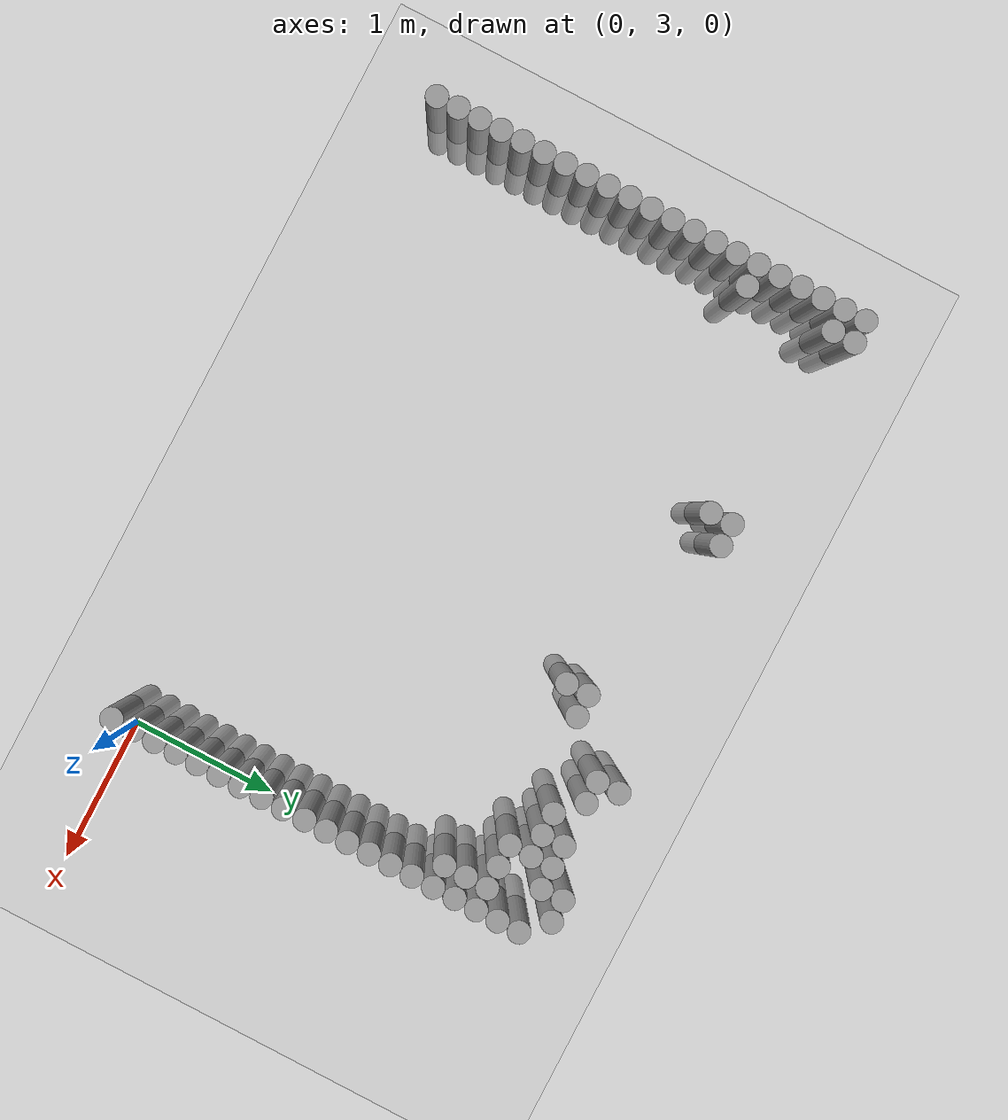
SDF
<sdf version="1.6">
 <world name="default">
  <model name="ground_plane">
   <static>1</static>
   <link name="link">
    <collision name="collision">
     <geometry><plane><normal>0 0 1</normal><size>100 100</size></plane></geometry>
     <surface><friction><ode><mu>100</mu><mu2>50</mu2></ode></friction></surface>
    </collision>
    <visual name="visual">
     <cast_shadows>0</cast_shadows>
     <geometry><plane><normal>0 0 1</normal><size>100 100</size></plane></geometry>
     <material>
      <script><uri>file://media/materials/scripts/gazebo.material</uri><name>Gazebo/Grey</name></script>
     </material>
    </visual>
   </link>
  </model>
  <model name="unit_cylinder_66">
   <pose>-0.075000 2.925000 0.000000 0.000000 0.000000 0.000000</pose>
   <link name="link">
    <inertial>
     <mass>1</mass>
     <inertia><ixx>0.145833</ixx><ixy>0</ixy><ixz>0</ixz><iyy>0.145833</iyy><iyz>0</iyz><izz>0.125</izz></inertia>
    </inertial>
    <collision name="collision">
     <geometry><cylinder><radius>0.075000</radius><length>1</length></cylinder></geometry>
    </collision>
    <visual name="visual">
     <geometry><cylinder><radius>0.075000</radius><length>1</length></cylinder></geometry>
     <material>
      <script><name>Gazebo/Grey</name><uri>file://media/materials/scripts/gazebo.material</uri></script>
     </material>
    </visual>
   </link>
  </model>
  <model name="unit_cylinder_67">
   <pose>-4.425000 2.925000 0.000000 0.000000 0.000000 0.000000</pose>
   <link name="link">
    <inertial>
     <mass>1</mass>
     <inertia><ixx>0.145833</ixx><ixy>0</ixy><ixz>0</ixz><iyy>0.145833</iyy><iyz>0</iyz><izz>0.125</izz></inertia>
    </inertial>
    <collision name="collision">
     <geometry><cylinder><radius>0.075000</radius><length>1</length></cylinder></geometry>
    </collision>
    <visual name="visual">
     <geometry><cylinder><radius>0.075000</radius><length>1</length></cylinder></geometry>
     <material>
      <script><name>Gazebo/Grey</name><uri>file://media/materials/scripts/gazebo.material</uri></script>
     </material>
    </visual>
   </link>
  </model>
  <model name="unit_cylinder_68">
   <pose>-0.075000 3.075000 0.000000 0.000000 0.000000 0.000000</pose>
   <link name="link">
    <inertial>
     <mass>1</mass>
     <inertia><ixx>0.145833</ixx><ixy>0</ixy><ixz>0</ixz><iyy>0.145833</iyy><iyz>0</iyz><izz>0.125</izz></inertia>
    </inertial>
    <collision name="collision">
     <geometry><cylinder><radius>0.075000</radius><length>1</length></cylinder></geometry>
    </collision>
    <visual name="visual">
     <geometry><cylinder><radius>0.075000</radius><length>1</length></cylinder></geometry>
     <material>
      <script><name>Gazebo/Grey</name><uri>file://media/materials/scripts/gazebo.material</uri></script>
     </material>
    </visual>
   </link>
  </model>
  <model name="unit_cylinder_69">
   <pose>-4.425000 3.075000 0.000000 0.000000 0.000000 0.000000</pose>
   <link name="link">
    <inertial>
     <mass>1</mass>
     <inertia><ixx>0.145833</ixx><ixy>0</ixy><ixz>0</ixz><iyy>0.145833</iyy><iyz>0</iyz><izz>0.125</izz></inertia>
    </inertial>
    <collision name="collision">
     <geometry><cylinder><radius>0.075000</radius><length>1</length></cylinder></geometry>
    </collision>
    <visual name="visual">
     <geometry><cylinder><radius>0.075000</radius><length>1</length></cylinder></geometry>
     <material>
      <script><name>Gazebo/Grey</name><uri>file://media/materials/scripts/gazebo.material</uri></script>
     </material>
    </visual>
   </link>
  </model>
  <model name="unit_cylinder_70">
   <pose>-0.075000 3.225000 0.000000 0.000000 0.000000 0.000000</pose>
   <link name="link">
    <inertial>
     <mass>1</mass>
     <inertia><ixx>0.145833</ixx><ixy>0</ixy><ixz>0</ixz><iyy>0.145833</iyy><iyz>0</iyz><izz>0.125</izz></inertia>
    </inertial>
    <collision name="collision">
     <geometry><cylinder><radius>0.075000</radius><length>1</length></cylinder></geometry>
    </collision>
    <visual name="visual">
     <geometry><cylinder><radius>0.075000</radius><length>1</length></cylinder></geometry>
     <material>
      <script><name>Gazebo/Grey</name><uri>file://media/materials/scripts/gazebo.material</uri></script>
     </material>
    </visual>
   </link>
  </model>
  <model name="unit_cylinder_71">
   <pose>-4.425000 3.225000 0.000000 0.000000 0.000000 0.000000</pose>
   <link name="link">
    <inertial>
     <mass>1</mass>
     <inertia><ixx>0.145833</ixx><ixy>0</ixy><ixz>0</ixz><iyy>0.145833</iyy><iyz>0</iyz><izz>0.125</izz></inertia>
    </inertial>
    <collision name="collision">
     <geometry><cylinder><radius>0.075000</radius><length>1</length></cylinder></geometry>
    </collision>
    <visual name="visual">
     <geometry><cylinder><radius>0.075000</radius><length>1</length></cylinder></geometry>
     <material>
      <script><name>Gazebo/Grey</name><uri>file://media/materials/scripts/gazebo.material</uri></script>
     </material>
    </visual>
   </link>
  </model>
  <model name="unit_cylinder_72">
   <pose>-0.075000 3.375000 0.000000 0.000000 0.000000 0.000000</pose>
   <link name="link">
    <inertial>
     <mass>1</mass>
     <inertia><ixx>0.145833</ixx><ixy>0</ixy><ixz>0</ixz><iyy>0.145833</iyy><iyz>0</iyz><izz>0.125</izz></inertia>
    </inertial>
    <collision name="collision">
     <geometry><cylinder><radius>0.075000</radius><length>1</length></cylinder></geometry>
    </collision>
    <visual name="visual">
     <geometry><cylinder><radius>0.075000</radius><length>1</length></cylinder></geometry>
     <material>
      <script><name>Gazebo/Grey</name><uri>file://media/materials/scripts/gazebo.material</uri></script>
     </material>
    </visual>
   </link>
  </model>
  <model name="unit_cylinder_73">
   <pose>-4.425000 3.375000 0.000000 0.000000 0.000000 0.000000</pose>
   <link name="link">
    <inertial>
     <mass>1</mass>
     <inertia><ixx>0.145833</ixx><ixy>0</ixy><ixz>0</ixz><iyy>0.145833</iyy><iyz>0</iyz><izz>0.125</izz></inertia>
    </inertial>
    <collision name="collision">
     <geometry><cylinder><radius>0.075000</radius><length>1</length></cylinder></geometry>
    </collision>
    <visual name="visual">
     <geometry><cylinder><radius>0.075000</radius><length>1</length></cylinder></geometry>
     <material>
      <script><name>Gazebo/Grey</name><uri>file://media/materials/scripts/gazebo.material</uri></script>
     </material>
    </visual>
   </link>
  </model>
  <model name="unit_cylinder_74">
   <pose>-0.075000 3.525000 0.000000 0.000000 0.000000 0.000000</pose>
   <link name="link">
    <inertial>
     <mass>1</mass>
     <inertia><ixx>0.145833</ixx><ixy>0</ixy><ixz>0</ixz><iyy>0.145833</iyy><iyz>0</iyz><izz>0.125</izz></inertia>
    </inertial>
    <collision name="collision">
     <geometry><cylinder><radius>0.075000</radius><length>1</length></cylinder></geometry>
    </collision>
    <visual name="visual">
     <geometry><cylinder><radius>0.075000</radius><length>1</length></cylinder></geometry>
     <material>
      <script><name>Gazebo/Grey</name><uri>file://media/materials/scripts/gazebo.material</uri></script>
     </material>
    </visual>
   </link>
  </model>
  <model name="unit_cylinder_75">
   <pose>-4.425000 3.525000 0.000000 0.000000 0.000000 0.000000</pose>
   <link name="link">
    <inertial>
     <mass>1</mass>
     <inertia><ixx>0.145833</ixx><ixy>0</ixy><ixz>0</ixz><iyy>0.145833</iyy><iyz>0</iyz><izz>0.125</izz></inertia>
    </inertial>
    <collision name="collision">
     <geometry><cylinder><radius>0.075000</radius><length>1</length></cylinder></geometry>
    </collision>
    <visual name="visual">
     <geometry><cylinder><radius>0.075000</radius><length>1</length></cylinder></geometry>
     <material>
      <script><name>Gazebo/Grey</name><uri>file://media/materials/scripts/gazebo.material</uri></script>
     </material>
    </visual>
   </link>
  </model>
  <model name="unit_cylinder_76">
   <pose>-0.075000 3.675000 0.000000 0.000000 0.000000 0.000000</pose>
   <link name="link">
    <inertial>
     <mass>1</mass>
     <inertia><ixx>0.145833</ixx><ixy>0</ixy><ixz>0</ixz><iyy>0.145833</iyy><iyz>0</iyz><izz>0.125</izz></inertia>
    </inertial>
    <collision name="collision">
     <geometry><cylinder><radius>0.075000</radius><length>1</length></cylinder></geometry>
    </collision>
    <visual name="visual">
     <geometry><cylinder><radius>0.075000</radius><length>1</length></cylinder></geometry>
     <material>
      <script><name>Gazebo/Grey</name><uri>file://media/materials/scripts/gazebo.material</uri></script>
     </material>
    </visual>
   </link>
  </model>
  <model name="unit_cylinder_77">
   <pose>-4.425000 3.675000 0.000000 0.000000 0.000000 0.000000</pose>
   <link name="link">
    <inertial>
     <mass>1</mass>
     <inertia><ixx>0.145833</ixx><ixy>0</ixy><ixz>0</ixz><iyy>0.145833</iyy><iyz>0</iyz><izz>0.125</izz></inertia>
    </inertial>
    <collision name="collision">
     <geometry><cylinder><radius>0.075000</radius><length>1</length></cylinder></geometry>
    </collision>
    <visual name="visual">
     <geometry><cylinder><radius>0.075000</radius><length>1</length></cylinder></geometry>
     <material>
      <script><name>Gazebo/Grey</name><uri>file://media/materials/scripts/gazebo.material</uri></script>
     </material>
    </visual>
   </link>
  </model>
  <model name="unit_cylinder_78">
   <pose>-0.075000 3.825000 0.000000 0.000000 0.000000 0.000000</pose>
   <link name="link">
    <inertial>
     <mass>1</mass>
     <inertia><ixx>0.145833</ixx><ixy>0</ixy><ixz>0</ixz><iyy>0.145833</iyy><iyz>0</iyz><izz>0.125</izz></inertia>
    </inertial>
    <collision name="collision">
     <geometry><cylinder><radius>0.075000</radius><length>1</length></cylinder></geometry>
    </collision>
    <visual name="visual">
     <geometry><cylinder><radius>0.075000</radius><length>1</length></cylinder></geometry>
     <material>
      <script><name>Gazebo/Grey</name><uri>file://media/materials/scripts/gazebo.material</uri></script>
     </material>
    </visual>
   </link>
  </model>
  <model name="unit_cylinder_79">
   <pose>-4.425000 3.825000 0.000000 0.000000 0.000000 0.000000</pose>
   <link name="link">
    <inertial>
     <mass>1</mass>
     <inertia><ixx>0.145833</ixx><ixy>0</ixy><ixz>0</ixz><iyy>0.145833</iyy><iyz>0</iyz><izz>0.125</izz></inertia>
    </inertial>
    <collision name="collision">
     <geometry><cylinder><radius>0.075000</radius><length>1</length></cylinder></geometry>
    </collision>
    <visual name="visual">
     <geometry><cylinder><radius>0.075000</radius><length>1</length></cylinder></geometry>
     <material>
      <script><name>Gazebo/Grey</name><uri>file://media/materials/scripts/gazebo.material</uri></script>
     </material>
    </visual>
   </link>
  </model>
  <model name="unit_cylinder_80">
   <pose>-0.075000 3.975000 0.000000 0.000000 0.000000 0.000000</pose>
   <link name="link">
    <inertial>
     <mass>1</mass>
     <inertia><ixx>0.145833</ixx><ixy>0</ixy><ixz>0</ixz><iyy>0.145833</iyy><iyz>0</iyz><izz>0.125</izz></inertia>
    </inertial>
    <collision name="collision">
     <geometry><cylinder><radius>0.075000</radius><length>1</length></cylinder></geometry>
    </collision>
    <visual name="visual">
     <geometry><cylinder><radius>0.075000</radius><length>1</length></cylinder></geometry>
     <material>
      <script><name>Gazebo/Grey</name><uri>file://media/materials/scripts/gazebo.material</uri></script>
     </material>
    </visual>
   </link>
  </model>
  <model name="unit_cylinder_81">
   <pose>-4.425000 3.975000 0.000000 0.000000 0.000000 0.000000</pose>
   <link name="link">
    <inertial>
     <mass>1</mass>
     <inertia><ixx>0.145833</ixx><ixy>0</ixy><ixz>0</ixz><iyy>0.145833</iyy><iyz>0</iyz><izz>0.125</izz></inertia>
    </inertial>
    <collision name="collision">
     <geometry><cylinder><radius>0.075000</radius><length>1</length></cylinder></geometry>
    </collision>
    <visual name="visual">
     <geometry><cylinder><radius>0.075000</radius><length>1</length></cylinder></geometry>
     <material>
      <script><name>Gazebo/Grey</name><uri>file://media/materials/scripts/gazebo.material</uri></script>
     </material>
    </visual>
   </link>
  </model>
  <model name="unit_cylinder_82">
   <pose>-0.075000 4.125000 0.000000 0.000000 0.000000 0.000000</pose>
   <link name="link">
    <inertial>
     <mass>1</mass>
     <inertia><ixx>0.145833</ixx><ixy>0</ixy><ixz>0</ixz><iyy>0.145833</iyy><iyz>0</iyz><izz>0.125</izz></inertia>
    </inertial>
    <collision name="collision">
     <geometry><cylinder><radius>0.075000</radius><length>1</length></cylinder></geometry>
    </collision>
    <visual name="visual">
     <geometry><cylinder><radius>0.075000</radius><length>1</length></cylinder></geometry>
     <material>
      <script><name>Gazebo/Grey</name><uri>file://media/materials/scripts/gazebo.material</uri></script>
     </material>
    </visual>
   </link>
  </model>
  <model name="unit_cylinder_83">
   <pose>-4.425000 4.125000 0.000000 0.000000 0.000000 0.000000</pose>
   <link name="link">
    <inertial>
     <mass>1</mass>
     <inertia><ixx>0.145833</ixx><ixy>0</ixy><ixz>0</ixz><iyy>0.145833</iyy><iyz>0</iyz><izz>0.125</izz></inertia>
    </inertial>
    <collision name="collision">
     <geometry><cylinder><radius>0.075000</radius><length>1</length></cylinder></geometry>
    </collision>
    <visual name="visual">
     <geometry><cylinder><radius>0.075000</radius><length>1</length></cylinder></geometry>
     <material>
      <script><name>Gazebo/Grey</name><uri>file://media/materials/scripts/gazebo.material</uri></script>
     </material>
    </visual>
   </link>
  </model>
  <model name="unit_cylinder_84">
   <pose>-0.075000 4.275000 0.000000 0.000000 0.000000 0.000000</pose>
   <link name="link">
    <inertial>
     <mass>1</mass>
     <inertia><ixx>0.145833</ixx><ixy>0</ixy><ixz>0</ixz><iyy>0.145833</iyy><iyz>0</iyz><izz>0.125</izz></inertia>
    </inertial>
    <collision name="collision">
     <geometry><cylinder><radius>0.075000</radius><length>1</length></cylinder></geometry>
    </collision>
    <visual name="visual">
     <geometry><cylinder><radius>0.075000</radius><length>1</length></cylinder></geometry>
     <material>
      <script><name>Gazebo/Grey</name><uri>file://media/materials/scripts/gazebo.material</uri></script>
     </material>
    </visual>
   </link>
  </model>
  <model name="unit_cylinder_85">
   <pose>-4.425000 4.275000 0.000000 0.000000 0.000000 0.000000</pose>
   <link name="link">
    <inertial>
     <mass>1</mass>
     <inertia><ixx>0.145833</ixx><ixy>0</ixy><ixz>0</ixz><iyy>0.145833</iyy><iyz>0</iyz><izz>0.125</izz></inertia>
    </inertial>
    <collision name="collision">
     <geometry><cylinder><radius>0.075000</radius><length>1</length></cylinder></geometry>
    </collision>
    <visual name="visual">
     <geometry><cylinder><radius>0.075000</radius><length>1</length></cylinder></geometry>
     <material>
      <script><name>Gazebo/Grey</name><uri>file://media/materials/scripts/gazebo.material</uri></script>
     </material>
    </visual>
   </link>
  </model>
  <model name="unit_cylinder_86">
   <pose>-0.075000 4.425000 0.000000 0.000000 0.000000 0.000000</pose>
   <link name="link">
    <inertial>
     <mass>1</mass>
     <inertia><ixx>0.145833</ixx><ixy>0</ixy><ixz>0</ixz><iyy>0.145833</iyy><iyz>0</iyz><izz>0.125</izz></inertia>
    </inertial>
    <collision name="collision">
     <geometry><cylinder><radius>0.075000</radius><length>1</length></cylinder></geometry>
    </collision>
    <visual name="visual">
     <geometry><cylinder><radius>0.075000</radius><length>1</length></cylinder></geometry>
     <material>
      <script><name>Gazebo/Grey</name><uri>file://media/materials/scripts/gazebo.material</uri></script>
     </material>
    </visual>
   </link>
  </model>
  <model name="unit_cylinder_87">
   <pose>-4.425000 4.425000 0.000000 0.000000 0.000000 0.000000</pose>
   <link name="link">
    <inertial>
     <mass>1</mass>
     <inertia><ixx>0.145833</ixx><ixy>0</ixy><ixz>0</ixz><iyy>0.145833</iyy><iyz>0</iyz><izz>0.125</izz></inertia>
    </inertial>
    <collision name="collision">
     <geometry><cylinder><radius>0.075000</radius><length>1</length></cylinder></geometry>
    </collision>
    <visual name="visual">
     <geometry><cylinder><radius>0.075000</radius><length>1</length></cylinder></geometry>
     <material>
      <script><name>Gazebo/Grey</name><uri>file://media/materials/scripts/gazebo.material</uri></script>
     </material>
    </visual>
   </link>
  </model>
  <model name="unit_cylinder_88">
   <pose>-0.075000 4.575000 0.000000 0.000000 0.000000 0.000000</pose>
   <link name="link">
    <inertial>
     <mass>1</mass>
     <inertia><ixx>0.145833</ixx><ixy>0</ixy><ixz>0</ixz><iyy>0.145833</iyy><iyz>0</iyz><izz>0.125</izz></inertia>
    </inertial>
    <collision name="collision">
     <geometry><cylinder><radius>0.075000</radius><length>1</length></cylinder></geometry>
    </collision>
    <visual name="visual">
     <geometry><cylinder><radius>0.075000</radius><length>1</length></cylinder></geometry>
     <material>
      <script><name>Gazebo/Grey</name><uri>file://media/materials/scripts/gazebo.material</uri></script>
     </material>
    </visual>
   </link>
  </model>
  <model name="unit_cylinder_89">
   <pose>-4.425000 4.575000 0.000000 0.000000 0.000000 0.000000</pose>
   <link name="link">
    <inertial>
     <mass>1</mass>
     <inertia><ixx>0.145833</ixx><ixy>0</ixy><ixz>0</ixz><iyy>0.145833</iyy><iyz>0</iyz><izz>0.125</izz></inertia>
    </inertial>
    <collision name="collision">
     <geometry><cylinder><radius>0.075000</radius><length>1</length></cylinder></geometry>
    </collision>
    <visual name="visual">
     <geometry><cylinder><radius>0.075000</radius><length>1</length></cylinder></geometry>
     <material>
      <script><name>Gazebo/Grey</name><uri>file://media/materials/scripts/gazebo.material</uri></script>
     </material>
    </visual>
   </link>
  </model>
  <model name="unit_cylinder_90">
   <pose>-0.075000 4.725000 0.000000 0.000000 0.000000 0.000000</pose>
   <link name="link">
    <inertial>
     <mass>1</mass>
     <inertia><ixx>0.145833</ixx><ixy>0</ixy><ixz>0</ixz><iyy>0.145833</iyy><iyz>0</iyz><izz>0.125</izz></inertia>
    </inertial>
    <collision name="collision">
     <geometry><cylinder><radius>0.075000</radius><length>1</length></cylinder></geometry>
    </collision>
    <visual name="visual">
     <geometry><cylinder><radius>0.075000</radius><length>1</length></cylinder></geometry>
     <material>
      <script><name>Gazebo/Grey</name><uri>file://media/materials/scripts/gazebo.material</uri></script>
     </material>
    </visual>
   </link>
  </model>
  <model name="unit_cylinder_91">
   <pose>-4.425000 4.725000 0.000000 0.000000 0.000000 0.000000</pose>
   <link name="link">
    <inertial>
     <mass>1</mass>
     <inertia><ixx>0.145833</ixx><ixy>0</ixy><ixz>0</ixz><iyy>0.145833</iyy><iyz>0</iyz><izz>0.125</izz></inertia>
    </inertial>
    <collision name="collision">
     <geometry><cylinder><radius>0.075000</radius><length>1</length></cylinder></geometry>
    </collision>
    <visual name="visual">
     <geometry><cylinder><radius>0.075000</radius><length>1</length></cylinder></geometry>
     <material>
      <script><name>Gazebo/Grey</name><uri>file://media/materials/scripts/gazebo.material</uri></script>
     </material>
    </visual>
   </link>
  </model>
  <model name="unit_cylinder_92">
   <pose>-0.075000 4.875000 0.000000 0.000000 0.000000 0.000000</pose>
   <link name="link">
    <inertial>
     <mass>1</mass>
     <inertia><ixx>0.145833</ixx><ixy>0</ixy><ixz>0</ixz><iyy>0.145833</iyy><iyz>0</iyz><izz>0.125</izz></inertia>
    </inertial>
    <collision name="collision">
     <geometry><cylinder><radius>0.075000</radius><length>1</length></cylinder></geometry>
    </collision>
    <visual name="visual">
     <geometry><cylinder><radius>0.075000</radius><length>1</length></cylinder></geometry>
     <material>
      <script><name>Gazebo/Grey</name><uri>file://media/materials/scripts/gazebo.material</uri></script>
     </material>
    </visual>
   </link>
  </model>
  <model name="unit_cylinder_93">
   <pose>-4.425000 4.875000 0.000000 0.000000 0.000000 0.000000</pose>
   <link name="link">
    <inertial>
     <mass>1</mass>
     <inertia><ixx>0.145833</ixx><ixy>0</ixy><ixz>0</ixz><iyy>0.145833</iyy><iyz>0</iyz><izz>0.125</izz></inertia>
    </inertial>
    <collision name="collision">
     <geometry><cylinder><radius>0.075000</radius><length>1</length></cylinder></geometry>
    </collision>
    <visual name="visual">
     <geometry><cylinder><radius>0.075000</radius><length>1</length></cylinder></geometry>
     <material>
      <script><name>Gazebo/Grey</name><uri>file://media/materials/scripts/gazebo.material</uri></script>
     </material>
    </visual>
   </link>
  </model>
  <model name="unit_cylinder_94">
   <pose>-0.075000 5.025000 0.000000 0.000000 0.000000 0.000000</pose>
   <link name="link">
    <inertial>
     <mass>1</mass>
     <inertia><ixx>0.145833</ixx><ixy>0</ixy><ixz>0</ixz><iyy>0.145833</iyy><iyz>0</iyz><izz>0.125</izz></inertia>
    </inertial>
    <collision name="collision">
     <geometry><cylinder><radius>0.075000</radius><length>1</length></cylinder></geometry>
    </collision>
    <visual name="visual">
     <geometry><cylinder><radius>0.075000</radius><length>1</length></cylinder></geometry>
     <material>
      <script><name>Gazebo/Grey</name><uri>file://media/materials/scripts/gazebo.material</uri></script>
     </material>
    </visual>
   </link>
  </model>
  <model name="unit_cylinder_95">
   <pose>-4.425000 5.025000 0.000000 0.000000 0.000000 0.000000</pose>
   <link name="link">
    <inertial>
     <mass>1</mass>
     <inertia><ixx>0.145833</ixx><ixy>0</ixy><ixz>0</ixz><iyy>0.145833</iyy><iyz>0</iyz><izz>0.125</izz></inertia>
    </inertial>
    <collision name="collision">
     <geometry><cylinder><radius>0.075000</radius><length>1</length></cylinder></geometry>
    </collision>
    <visual name="visual">
     <geometry><cylinder><radius>0.075000</radius><length>1</length></cylinder></geometry>
     <material>
      <script><name>Gazebo/Grey</name><uri>file://media/materials/scripts/gazebo.material</uri></script>
     </material>
    </visual>
   </link>
  </model>
  <model name="unit_cylinder_96">
   <pose>-4.425000 5.175000 0.000000 0.000000 0.000000 0.000000</pose>
   <link name="link">
    <inertial>
     <mass>1</mass>
     <inertia><ixx>0.145833</ixx><ixy>0</ixy><ixz>0</ixz><iyy>0.145833</iyy><iyz>0</iyz><izz>0.125</izz></inertia>
    </inertial>
    <collision name="collision">
     <geometry><cylinder><radius>0.075000</radius><length>1</length></cylinder></geometry>
    </collision>
    <visual name="visual">
     <geometry><cylinder><radius>0.075000</radius><length>1</length></cylinder></geometry>
     <material>
      <script><name>Gazebo/Grey</name><uri>file://media/materials/scripts/gazebo.material</uri></script>
     </material>
    </visual>
   </link>
  </model>
  <model name="unit_cylinder_97">
   <pose>-4.425000 5.325000 0.000000 0.000000 0.000000 0.000000</pose>
   <link name="link">
    <inertial>
     <mass>1</mass>
     <inertia><ixx>0.145833</ixx><ixy>0</ixy><ixz>0</ixz><iyy>0.145833</iyy><iyz>0</iyz><izz>0.125</izz></inertia>
    </inertial>
    <collision name="collision">
     <geometry><cylinder><radius>0.075000</radius><length>1</length></cylinder></geometry>
    </collision>
    <visual name="visual">
     <geometry><cylinder><radius>0.075000</radius><length>1</length></cylinder></geometry>
     <material>
      <script><name>Gazebo/Grey</name><uri>file://media/materials/scripts/gazebo.material</uri></script>
     </material>
    </visual>
   </link>
  </model>
  <model name="unit_cylinder_98">
   <pose>-4.425000 5.475000 0.000000 0.000000 0.000000 0.000000</pose>
   <link name="link">
    <inertial>
     <mass>1</mass>
     <inertia><ixx>0.145833</ixx><ixy>0</ixy><ixz>0</ixz><iyy>0.145833</iyy><iyz>0</iyz><izz>0.125</izz></inertia>
    </inertial>
    <collision name="collision">
     <geometry><cylinder><radius>0.075000</radius><length>1</length></cylinder></geometry>
    </collision>
    <visual name="visual">
     <geometry><cylinder><radius>0.075000</radius><length>1</length></cylinder></geometry>
     <material>
      <script><name>Gazebo/Grey</name><uri>file://media/materials/scripts/gazebo.material</uri></script>
     </material>
    </visual>
   </link>
  </model>
  <model name="unit_cylinder_99">
   <pose>-4.425000 5.625000 0.000000 0.000000 0.000000 0.000000</pose>
   <link name="link">
    <inertial>
     <mass>1</mass>
     <inertia><ixx>0.145833</ixx><ixy>0</ixy><ixz>0</ixz><iyy>0.145833</iyy><iyz>0</iyz><izz>0.125</izz></inertia>
    </inertial>
    <collision name="collision">
     <geometry><cylinder><radius>0.075000</radius><length>1</length></cylinder></geometry>
    </collision>
    <visual name="visual">
     <geometry><cylinder><radius>0.075000</radius><length>1</length></cylinder></geometry>
     <material>
      <script><name>Gazebo/Grey</name><uri>file://media/materials/scripts/gazebo.material</uri></script>
     </material>
    </visual>
   </link>
  </model>
  <model name="unit_cylinder_100">
   <pose>-4.425000 5.775000 0.000000 0.000000 0.000000 0.000000</pose>
   <link name="link">
    <inertial>
     <mass>1</mass>
     <inertia><ixx>0.145833</ixx><ixy>0</ixy><ixz>0</ixz><iyy>0.145833</iyy><iyz>0</iyz><izz>0.125</izz></inertia>
    </inertial>
    <collision name="collision">
     <geometry><cylinder><radius>0.075000</radius><length>1</length></cylinder></geometry>
    </collision>
    <visual name="visual">
     <geometry><cylinder><radius>0.075000</radius><length>1</length></cylinder></geometry>
     <material>
      <script><name>Gazebo/Grey</name><uri>file://media/materials/scripts/gazebo.material</uri></script>
     </material>
    </visual>
   </link>
  </model>
  <model name="unit_cylinder_101">
   <pose>-4.425000 5.925000 0.000000 0.000000 0.000000 0.000000</pose>
   <link name="link">
    <inertial>
     <mass>1</mass>
     <inertia><ixx>0.145833</ixx><ixy>0</ixy><ixz>0</ixz><iyy>0.145833</iyy><iyz>0</iyz><izz>0.125</izz></inertia>
    </inertial>
    <collision name="collision">
     <geometry><cylinder><radius>0.075000</radius><length>1</length></cylinder></geometry>
    </collision>
    <visual name="visual">
     <geometry><cylinder><radius>0.075000</radius><length>1</length></cylinder></geometry>
     <material>
      <script><name>Gazebo/Grey</name><uri>file://media/materials/scripts/gazebo.material</uri></script>
     </material>
    </visual>
   </link>
  </model>
  <model name="unit_cylinder_126">
   <pose>-4.275000 5.175000 0.000000 0.000000 0.000000 0.000000</pose>
   <link name="link">
    <inertial>
     <mass>1</mass>
     <inertia><ixx>0.145833</ixx><ixy>0</ixy><ixz>0</ixz><iyy>0.145833</iyy><iyz>0</iyz><izz>0.125</izz></inertia>
    </inertial>
    <collision name="collision">
     <geometry><cylinder><radius>0.075000</radius><length>1</length></cylinder></geometry>
    </collision>
    <visual name="visual">
     <geometry><cylinder><radius>0.075000</radius><length>1</length></cylinder></geometry>
     <material>
      <script><name>Gazebo/Grey</name><uri>file://media/materials/scripts/gazebo.material</uri></script>
     </material>
    </visual>
   </link>
  </model>
  <model name="unit_cylinder_127">
   <pose>-4.275000 5.775000 0.000000 0.000000 0.000000 0.000000</pose>
   <link name="link">
    <inertial>
     <mass>1</mass>
     <inertia><ixx>0.145833</ixx><ixy>0</ixy><ixz>0</ixz><iyy>0.145833</iyy><iyz>0</iyz><izz>0.125</izz></inertia>
    </inertial>
    <collision name="collision">
     <geometry><cylinder><radius>0.075000</radius><length>1</length></cylinder></geometry>
    </collision>
    <visual name="visual">
     <geometry><cylinder><radius>0.075000</radius><length>1</length></cylinder></geometry>
     <material>
      <script><name>Gazebo/Grey</name><uri>file://media/materials/scripts/gazebo.material</uri></script>
     </material>
    </visual>
   </link>
  </model>
  <model name="unit_cylinder_128">
   <pose>-4.275000 5.925000 0.000000 0.000000 0.000000 0.000000</pose>
   <link name="link">
    <inertial>
     <mass>1</mass>
     <inertia><ixx>0.145833</ixx><ixy>0</ixy><ixz>0</ixz><iyy>0.145833</iyy><iyz>0</iyz><izz>0.125</izz></inertia>
    </inertial>
    <collision name="collision">
     <geometry><cylinder><radius>0.075000</radius><length>1</length></cylinder></geometry>
    </collision>
    <visual name="visual">
     <geometry><cylinder><radius>0.075000</radius><length>1</length></cylinder></geometry>
     <material>
      <script><name>Gazebo/Grey</name><uri>file://media/materials/scripts/gazebo.material</uri></script>
     </material>
    </visual>
   </link>
  </model>
  <model name="unit_cylinder_152">
   <pose>-2.925000 5.625000 0.000000 0.000000 0.000000 0.000000</pose>
   <link name="link">
    <inertial>
     <mass>1</mass>
     <inertia><ixx>0.145833</ixx><ixy>0</ixy><ixz>0</ixz><iyy>0.145833</iyy><iyz>0</iyz><izz>0.125</izz></inertia>
    </inertial>
    <collision name="collision">
     <geometry><cylinder><radius>0.075000</radius><length>1</length></cylinder></geometry>
    </collision>
    <visual name="visual">
     <geometry><cylinder><radius>0.075000</radius><length>1</length></cylinder></geometry>
     <material>
      <script><name>Gazebo/Grey</name><uri>file://media/materials/scripts/gazebo.material</uri></script>
     </material>
    </visual>
   </link>
  </model>
  <model name="unit_cylinder_153">
   <pose>-2.925000 5.775000 0.000000 0.000000 0.000000 0.000000</pose>
   <link name="link">
    <inertial>
     <mass>1</mass>
     <inertia><ixx>0.145833</ixx><ixy>0</ixy><ixz>0</ixz><iyy>0.145833</iyy><iyz>0</iyz><izz>0.125</izz></inertia>
    </inertial>
    <collision name="collision">
     <geometry><cylinder><radius>0.075000</radius><length>1</length></cylinder></geometry>
    </collision>
    <visual name="visual">
     <geometry><cylinder><radius>0.075000</radius><length>1</length></cylinder></geometry>
     <material>
      <script><name>Gazebo/Grey</name><uri>file://media/materials/scripts/gazebo.material</uri></script>
     </material>
    </visual>
   </link>
  </model>
  <model name="unit_cylinder_154">
   <pose>-2.775000 5.775000 0.000000 0.000000 0.000000 0.000000</pose>
   <link name="link">
    <inertial>
     <mass>1</mass>
     <inertia><ixx>0.145833</ixx><ixy>0</ixy><ixz>0</ixz><iyy>0.145833</iyy><iyz>0</iyz><izz>0.125</izz></inertia>
    </inertial>
    <collision name="collision">
     <geometry><cylinder><radius>0.075000</radius><length>1</length></cylinder></geometry>
    </collision>
    <visual name="visual">
     <geometry><cylinder><radius>0.075000</radius><length>1</length></cylinder></geometry>
     <material>
      <script><name>Gazebo/Grey</name><uri>file://media/materials/scripts/gazebo.material</uri></script>
     </material>
    </visual>
   </link>
  </model>
  <model name="unit_cylinder_172">
   <pose>-1.575000 5.325000 0.000000 0.000000 0.000000 0.000000</pose>
   <link name="link">
    <inertial>
     <mass>1</mass>
     <inertia><ixx>0.145833</ixx><ixy>0</ixy><ixz>0</ixz><iyy>0.145833</iyy><iyz>0</iyz><izz>0.125</izz></inertia>
    </inertial>
    <collision name="collision">
     <geometry><cylinder><radius>0.075000</radius><length>1</length></cylinder></geometry>
    </collision>
    <visual name="visual">
     <geometry><cylinder><radius>0.075000</radius><length>1</length></cylinder></geometry>
     <material>
      <script><name>Gazebo/Grey</name><uri>file://media/materials/scripts/gazebo.material</uri></script>
     </material>
    </visual>
   </link>
  </model>
  <model name="unit_cylinder_173">
   <pose>-1.575000 5.475000 0.000000 0.000000 0.000000 0.000000</pose>
   <link name="link">
    <inertial>
     <mass>1</mass>
     <inertia><ixx>0.145833</ixx><ixy>0</ixy><ixz>0</ixz><iyy>0.145833</iyy><iyz>0</iyz><izz>0.125</izz></inertia>
    </inertial>
    <collision name="collision">
     <geometry><cylinder><radius>0.075000</radius><length>1</length></cylinder></geometry>
    </collision>
    <visual name="visual">
     <geometry><cylinder><radius>0.075000</radius><length>1</length></cylinder></geometry>
     <material>
      <script><name>Gazebo/Grey</name><uri>file://media/materials/scripts/gazebo.material</uri></script>
     </material>
    </visual>
   </link>
  </model>
  <model name="unit_cylinder_179">
   <pose>-1.425000 5.475000 0.000000 0.000000 0.000000 0.000000</pose>
   <link name="link">
    <inertial>
     <mass>1</mass>
     <inertia><ixx>0.145833</ixx><ixy>0</ixy><ixz>0</ixz><iyy>0.145833</iyy><iyz>0</iyz><izz>0.125</izz></inertia>
    </inertial>
    <collision name="collision">
     <geometry><cylinder><radius>0.075000</radius><length>1</length></cylinder></geometry>
    </collision>
    <visual name="visual">
     <geometry><cylinder><radius>0.075000</radius><length>1</length></cylinder></geometry>
     <material>
      <script><name>Gazebo/Grey</name><uri>file://media/materials/scripts/gazebo.material</uri></script>
     </material>
    </visual>
   </link>
  </model>
  <model name="unit_cylinder_188">
   <pose>-1.125000 5.775000 0.000000 0.000000 0.000000 0.000000</pose>
   <link name="link">
    <inertial>
     <mass>1</mass>
     <inertia><ixx>0.145833</ixx><ixy>0</ixy><ixz>0</ixz><iyy>0.145833</iyy><iyz>0</iyz><izz>0.125</izz></inertia>
    </inertial>
    <collision name="collision">
     <geometry><cylinder><radius>0.075000</radius><length>1</length></cylinder></geometry>
    </collision>
    <visual name="visual">
     <geometry><cylinder><radius>0.075000</radius><length>1</length></cylinder></geometry>
     <material>
      <script><name>Gazebo/Grey</name><uri>file://media/materials/scripts/gazebo.material</uri></script>
     </material>
    </visual>
   </link>
  </model>
  <model name="unit_cylinder_189">
   <pose>-1.125000 5.925000 0.000000 0.000000 0.000000 0.000000</pose>
   <link name="link">
    <inertial>
     <mass>1</mass>
     <inertia><ixx>0.145833</ixx><ixy>0</ixy><ixz>0</ixz><iyy>0.145833</iyy><iyz>0</iyz><izz>0.125</izz></inertia>
    </inertial>
    <collision name="collision">
     <geometry><cylinder><radius>0.075000</radius><length>1</length></cylinder></geometry>
    </collision>
    <visual name="visual">
     <geometry><cylinder><radius>0.075000</radius><length>1</length></cylinder></geometry>
     <material>
      <script><name>Gazebo/Grey</name><uri>file://media/materials/scripts/gazebo.material</uri></script>
     </material>
    </visual>
   </link>
  </model>
  <model name="unit_cylinder_192">
   <pose>-0.975000 5.775000 0.000000 0.000000 0.000000 0.000000</pose>
   <link name="link">
    <inertial>
     <mass>1</mass>
     <inertia><ixx>0.145833</ixx><ixy>0</ixy><ixz>0</ixz><iyy>0.145833</iyy><iyz>0</iyz><izz>0.125</izz></inertia>
    </inertial>
    <collision name="collision">
     <geometry><cylinder><radius>0.075000</radius><length>1</length></cylinder></geometry>
    </collision>
    <visual name="visual">
     <geometry><cylinder><radius>0.075000</radius><length>1</length></cylinder></geometry>
     <material>
      <script><name>Gazebo/Grey</name><uri>file://media/materials/scripts/gazebo.material</uri></script>
     </material>
    </visual>
   </link>
  </model>
  <model name="unit_cylinder_196">
   <pose>-0.825000 5.625000 0.000000 0.000000 0.000000 0.000000</pose>
   <link name="link">
    <inertial>
     <mass>1</mass>
     <inertia><ixx>0.145833</ixx><ixy>0</ixy><ixz>0</ixz><iyy>0.145833</iyy><iyz>0</iyz><izz>0.125</izz></inertia>
    </inertial>
    <collision name="collision">
     <geometry><cylinder><radius>0.075000</radius><length>1</length></cylinder></geometry>
    </collision>
    <visual name="visual">
     <geometry><cylinder><radius>0.075000</radius><length>1</length></cylinder></geometry>
     <material>
      <script><name>Gazebo/Grey</name><uri>file://media/materials/scripts/gazebo.material</uri></script>
     </material>
    </visual>
   </link>
  </model>
  <model name="unit_cylinder_200">
   <pose>-0.675000 5.625000 0.000000 0.000000 0.000000 0.000000</pose>
   <link name="link">
    <inertial>
     <mass>1</mass>
     <inertia><ixx>0.145833</ixx><ixy>0</ixy><ixz>0</ixz><iyy>0.145833</iyy><iyz>0</iyz><izz>0.125</izz></inertia>
    </inertial>
    <collision name="collision">
     <geometry><cylinder><radius>0.075000</radius><length>1</length></cylinder></geometry>
    </collision>
    <visual name="visual">
     <geometry><cylinder><radius>0.075000</radius><length>1</length></cylinder></geometry>
     <material>
      <script><name>Gazebo/Grey</name><uri>file://media/materials/scripts/gazebo.material</uri></script>
     </material>
    </visual>
   </link>
  </model>
  <model name="unit_cylinder_201">
   <pose>-0.675000 5.775000 0.000000 0.000000 0.000000 0.000000</pose>
   <link name="link">
    <inertial>
     <mass>1</mass>
     <inertia><ixx>0.145833</ixx><ixy>0</ixy><ixz>0</ixz><iyy>0.145833</iyy><iyz>0</iyz><izz>0.125</izz></inertia>
    </inertial>
    <collision name="collision">
     <geometry><cylinder><radius>0.075000</radius><length>1</length></cylinder></geometry>
    </collision>
    <visual name="visual">
     <geometry><cylinder><radius>0.075000</radius><length>1</length></cylinder></geometry>
     <material>
      <script><name>Gazebo/Grey</name><uri>file://media/materials/scripts/gazebo.material</uri></script>
     </material>
    </visual>
   </link>
  </model>
  <model name="unit_cylinder_207">
   <pose>-0.525000 5.475000 0.000000 0.000000 0.000000 0.000000</pose>
   <link name="link">
    <inertial>
     <mass>1</mass>
     <inertia><ixx>0.145833</ixx><ixy>0</ixy><ixz>0</ixz><iyy>0.145833</iyy><iyz>0</iyz><izz>0.125</izz></inertia>
    </inertial>
    <collision name="collision">
     <geometry><cylinder><radius>0.075000</radius><length>1</length></cylinder></geometry>
    </collision>
    <visual name="visual">
     <geometry><cylinder><radius>0.075000</radius><length>1</length></cylinder></geometry>
     <material>
      <script><name>Gazebo/Grey</name><uri>file://media/materials/scripts/gazebo.material</uri></script>
     </material>
    </visual>
   </link>
  </model>
  <model name="unit_cylinder_208">
   <pose>-0.525000 5.625000 0.000000 0.000000 0.000000 0.000000</pose>
   <link name="link">
    <inertial>
     <mass>1</mass>
     <inertia><ixx>0.145833</ixx><ixy>0</ixy><ixz>0</ixz><iyy>0.145833</iyy><iyz>0</iyz><izz>0.125</izz></inertia>
    </inertial>
    <collision name="collision">
     <geometry><cylinder><radius>0.075000</radius><length>1</length></cylinder></geometry>
    </collision>
    <visual name="visual">
     <geometry><cylinder><radius>0.075000</radius><length>1</length></cylinder></geometry>
     <material>
      <script><name>Gazebo/Grey</name><uri>file://media/materials/scripts/gazebo.material</uri></script>
     </material>
    </visual>
   </link>
  </model>
  <model name="unit_cylinder_209">
   <pose>-0.525000 5.775000 0.000000 0.000000 0.000000 0.000000</pose>
   <link name="link">
    <inertial>
     <mass>1</mass>
     <inertia><ixx>0.145833</ixx><ixy>0</ixy><ixz>0</ixz><iyy>0.145833</iyy><iyz>0</iyz><izz>0.125</izz></inertia>
    </inertial>
    <collision name="collision">
     <geometry><cylinder><radius>0.075000</radius><length>1</length></cylinder></geometry>
    </collision>
    <visual name="visual">
     <geometry><cylinder><radius>0.075000</radius><length>1</length></cylinder></geometry>
     <material>
      <script><name>Gazebo/Grey</name><uri>file://media/materials/scripts/gazebo.material</uri></script>
     </material>
    </visual>
   </link>
  </model>
  <model name="unit_cylinder_215">
   <pose>-0.375000 5.475000 0.000000 0.000000 0.000000 0.000000</pose>
   <link name="link">
    <inertial>
     <mass>1</mass>
     <inertia><ixx>0.145833</ixx><ixy>0</ixy><ixz>0</ixz><iyy>0.145833</iyy><iyz>0</iyz><izz>0.125</izz></inertia>
    </inertial>
    <collision name="collision">
     <geometry><cylinder><radius>0.075000</radius><length>1</length></cylinder></geometry>
    </collision>
    <visual name="visual">
     <geometry><cylinder><radius>0.075000</radius><length>1</length></cylinder></geometry>
     <material>
      <script><name>Gazebo/Grey</name><uri>file://media/materials/scripts/gazebo.material</uri></script>
     </material>
    </visual>
   </link>
  </model>
  <model name="unit_cylinder_216">
   <pose>-0.375000 5.775000 0.000000 0.000000 0.000000 0.000000</pose>
   <link name="link">
    <inertial>
     <mass>1</mass>
     <inertia><ixx>0.145833</ixx><ixy>0</ixy><ixz>0</ixz><iyy>0.145833</iyy><iyz>0</iyz><izz>0.125</izz></inertia>
    </inertial>
    <collision name="collision">
     <geometry><cylinder><radius>0.075000</radius><length>1</length></cylinder></geometry>
    </collision>
    <visual name="visual">
     <geometry><cylinder><radius>0.075000</radius><length>1</length></cylinder></geometry>
     <material>
      <script><name>Gazebo/Grey</name><uri>file://media/materials/scripts/gazebo.material</uri></script>
     </material>
    </visual>
   </link>
  </model>
  <model name="unit_cylinder_217">
   <pose>-0.375000 5.925000 0.000000 0.000000 0.000000 0.000000</pose>
   <link name="link">
    <inertial>
     <mass>1</mass>
     <inertia><ixx>0.145833</ixx><ixy>0</ixy><ixz>0</ixz><iyy>0.145833</iyy><iyz>0</iyz><izz>0.125</izz></inertia>
    </inertial>
    <collision name="collision">
     <geometry><cylinder><radius>0.075000</radius><length>1</length></cylinder></geometry>
    </collision>
    <visual name="visual">
     <geometry><cylinder><radius>0.075000</radius><length>1</length></cylinder></geometry>
     <material>
      <script><name>Gazebo/Grey</name><uri>file://media/materials/scripts/gazebo.material</uri></script>
     </material>
    </visual>
   </link>
  </model>
  <model name="unit_cylinder_220">
   <pose>-0.225000 5.175000 0.000000 0.000000 0.000000 0.000000</pose>
   <link name="link">
    <inertial>
     <mass>1</mass>
     <inertia><ixx>0.145833</ixx><ixy>0</ixy><ixz>0</ixz><iyy>0.145833</iyy><iyz>0</iyz><izz>0.125</izz></inertia>
    </inertial>
    <collision name="collision">
     <geometry><cylinder><radius>0.075000</radius><length>1</length></cylinder></geometry>
    </collision>
    <visual name="visual">
     <geometry><cylinder><radius>0.075000</radius><length>1</length></cylinder></geometry>
     <material>
      <script><name>Gazebo/Grey</name><uri>file://media/materials/scripts/gazebo.material</uri></script>
     </material>
    </visual>
   </link>
  </model>
  <model name="unit_cylinder_221">
   <pose>-0.225000 5.325000 0.000000 0.000000 0.000000 0.000000</pose>
   <link name="link">
    <inertial>
     <mass>1</mass>
     <inertia><ixx>0.145833</ixx><ixy>0</ixy><ixz>0</ixz><iyy>0.145833</iyy><iyz>0</iyz><izz>0.125</izz></inertia>
    </inertial>
    <collision name="collision">
     <geometry><cylinder><radius>0.075000</radius><length>1</length></cylinder></geometry>
    </collision>
    <visual name="visual">
     <geometry><cylinder><radius>0.075000</radius><length>1</length></cylinder></geometry>
     <material>
      <script><name>Gazebo/Grey</name><uri>file://media/materials/scripts/gazebo.material</uri></script>
     </material>
    </visual>
   </link>
  </model>
  <model name="unit_cylinder_222">
   <pose>-0.225000 5.475000 0.000000 0.000000 0.000000 0.000000</pose>
   <link name="link">
    <inertial>
     <mass>1</mass>
     <inertia><ixx>0.145833</ixx><ixy>0</ixy><ixz>0</ixz><iyy>0.145833</iyy><iyz>0</iyz><izz>0.125</izz></inertia>
    </inertial>
    <collision name="collision">
     <geometry><cylinder><radius>0.075000</radius><length>1</length></cylinder></geometry>
    </collision>
    <visual name="visual">
     <geometry><cylinder><radius>0.075000</radius><length>1</length></cylinder></geometry>
     <material>
      <script><name>Gazebo/Grey</name><uri>file://media/materials/scripts/gazebo.material</uri></script>
     </material>
    </visual>
   </link>
  </model>
  <model name="unit_cylinder_223">
   <pose>-0.225000 5.925000 0.000000 0.000000 0.000000 0.000000</pose>
   <link name="link">
    <inertial>
     <mass>1</mass>
     <inertia><ixx>0.145833</ixx><ixy>0</ixy><ixz>0</ixz><iyy>0.145833</iyy><iyz>0</iyz><izz>0.125</izz></inertia>
    </inertial>
    <collision name="collision">
     <geometry><cylinder><radius>0.075000</radius><length>1</length></cylinder></geometry>
    </collision>
    <visual name="visual">
     <geometry><cylinder><radius>0.075000</radius><length>1</length></cylinder></geometry>
     <material>
      <script><name>Gazebo/Grey</name><uri>file://media/materials/scripts/gazebo.material</uri></script>
     </material>
    </visual>
   </link>
  </model>
  <model name="unit_cylinder_234">
   <pose>-0.075000 5.175000 0.000000 0.000000 0.000000 0.000000</pose>
   <link name="link">
    <inertial>
     <mass>1</mass>
     <inertia><ixx>0.145833</ixx><ixy>0</ixy><ixz>0</ixz><iyy>0.145833</iyy><iyz>0</iyz><izz>0.125</izz></inertia>
    </inertial>
    <collision name="collision">
     <geometry><cylinder><radius>0.075000</radius><length>1</length></cylinder></geometry>
    </collision>
    <visual name="visual">
     <geometry><cylinder><radius>0.075000</radius><length>1</length></cylinder></geometry>
     <material>
      <script><name>Gazebo/Grey</name><uri>file://media/materials/scripts/gazebo.material</uri></script>
     </material>
    </visual>
   </link>
  </model>
  <model name="unit_cylinder_235">
   <pose>-0.075000 5.325000 0.000000 0.000000 0.000000 0.000000</pose>
   <link name="link">
    <inertial>
     <mass>1</mass>
     <inertia><ixx>0.145833</ixx><ixy>0</ixy><ixz>0</ixz><iyy>0.145833</iyy><iyz>0</iyz><izz>0.125</izz></inertia>
    </inertial>
    <collision name="collision">
     <geometry><cylinder><radius>0.075000</radius><length>1</length></cylinder></geometry>
    </collision>
    <visual name="visual">
     <geometry><cylinder><radius>0.075000</radius><length>1</length></cylinder></geometry>
     <material>
      <script><name>Gazebo/Grey</name><uri>file://media/materials/scripts/gazebo.material</uri></script>
     </material>
    </visual>
   </link>
  </model>
  <model name="unit_cylinder_236">
   <pose>-0.075000 5.475000 0.000000 0.000000 0.000000 0.000000</pose>
   <link name="link">
    <inertial>
     <mass>1</mass>
     <inertia><ixx>0.145833</ixx><ixy>0</ixy><ixz>0</ixz><iyy>0.145833</iyy><iyz>0</iyz><izz>0.125</izz></inertia>
    </inertial>
    <collision name="collision">
     <geometry><cylinder><radius>0.075000</radius><length>1</length></cylinder></geometry>
    </collision>
    <visual name="visual">
     <geometry><cylinder><radius>0.075000</radius><length>1</length></cylinder></geometry>
     <material>
      <script><name>Gazebo/Grey</name><uri>file://media/materials/scripts/gazebo.material</uri></script>
     </material>
    </visual>
   </link>
  </model>
  <model name="unit_cylinder_237">
   <pose>-0.075000 5.625000 0.000000 0.000000 0.000000 0.000000</pose>
   <link name="link">
    <inertial>
     <mass>1</mass>
     <inertia><ixx>0.145833</ixx><ixy>0</ixy><ixz>0</ixz><iyy>0.145833</iyy><iyz>0</iyz><izz>0.125</izz></inertia>
    </inertial>
    <collision name="collision">
     <geometry><cylinder><radius>0.075000</radius><length>1</length></cylinder></geometry>
    </collision>
    <visual name="visual">
     <geometry><cylinder><radius>0.075000</radius><length>1</length></cylinder></geometry>
     <material>
      <script><name>Gazebo/Grey</name><uri>file://media/materials/scripts/gazebo.material</uri></script>
     </material>
    </visual>
   </link>
  </model>
  <model name="unit_cylinder_238">
   <pose>-0.075000 5.775000 0.000000 0.000000 0.000000 0.000000</pose>
   <link name="link">
    <inertial>
     <mass>1</mass>
     <inertia><ixx>0.145833</ixx><ixy>0</ixy><ixz>0</ixz><iyy>0.145833</iyy><iyz>0</iyz><izz>0.125</izz></inertia>
    </inertial>
    <collision name="collision">
     <geometry><cylinder><radius>0.075000</radius><length>1</length></cylinder></geometry>
    </collision>
    <visual name="visual">
     <geometry><cylinder><radius>0.075000</radius><length>1</length></cylinder></geometry>
     <material>
      <script><name>Gazebo/Grey</name><uri>file://media/materials/scripts/gazebo.material</uri></script>
     </material>
    </visual>
   </link>
  </model>
 </world>
</sdf>
